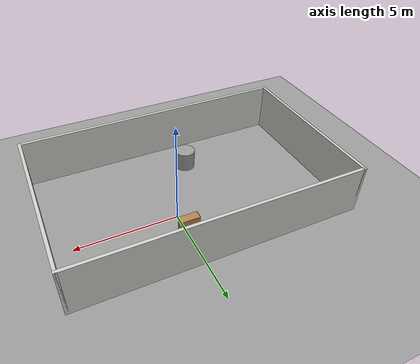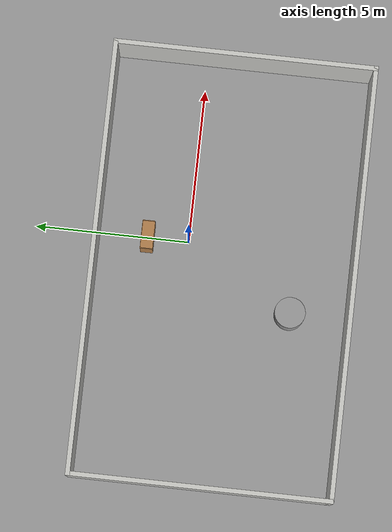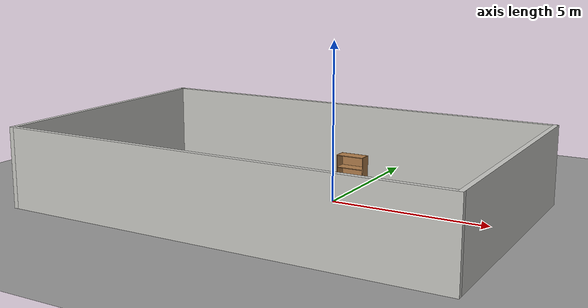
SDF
<sdf version="1.6">
 <world name="default">
  <light name="sun" type="directional">
   <pose>0 0 10 0 -0 0</pose>
   <diffuse>0.8 0.8 0.8 1</diffuse>
   <specular>0.2 0.2 0.2 1</specular>
   <attenuation>
    <range>1000</range>
    <constant>0.9</constant>
    <linear>0.01</linear>
    <quadratic>0.001</quadratic>
   </attenuation>
   <direction>0.5 0.1 -0.9</direction>
  </light>
  <scene><ambient>0.4 0.4 0.4 1</ambient><background>0.7 0.7 0.7 1</background><shadows>1</shadows></scene>
  <model name="bookshelf">
   <static>1</static>
   <link name="link">
    <inertial><mass>1</mass></inertial>
    <collision name="back">
     <pose>0 0.005 0.6 0 -0 0</pose>
     <geometry><box><size>0.9 0.01 1.2</size></box></geometry>
    </collision>
    <visual name="visual1">
     <pose>0 0.005 0.6 0 -0 0</pose>
     <geometry><box><size>0.9 0.01 1.2</size></box></geometry>
     <material>
      <script><uri>file://media/materials/scripts/gazebo.material</uri><name>Gazebo/Wood</name></script>
     </material>
    </visual>
    <collision name="left_side">
     <pose>0.45 -0.195 0.6 0 -0 0</pose>
     <geometry><box><size>0.02 0.4 1.2</size></box></geometry>
    </collision>
    <visual name="visual2">
     <pose>0.45 -0.195 0.6 0 -0 0</pose>
     <geometry><box><size>0.02 0.4 1.2</size></box></geometry>
     <material>
      <script><uri>file://media/materials/scripts/gazebo.material</uri><name>Gazebo/Wood</name></script>
     </material>
    </visual>
    <collision name="right_side">
     <pose>-0.45 -0.195 0.6 0 -0 0</pose>
     <geometry><box><size>0.02 0.4 1.2</size></box></geometry>
    </collision>
    <visual name="visual3">
     <pose>-0.45 -0.195 0.6 0 -0 0</pose>
     <geometry><box><size>0.02 0.4 1.2</size></box></geometry>
     <material>
      <script><uri>file://media/materials/scripts/gazebo.material</uri><name>Gazebo/Wood</name></script>
     </material>
    </visual>
    <collision name="bottom">
     <pose>0 -0.195 0.03 0 -0 0</pose>
     <geometry><box><size>0.88 0.4 0.06</size></box></geometry>
    </collision>
    <visual name="visual4">
     <pose>0 -0.195 0.03 0 -0 0</pose>
     <geometry><box><size>0.88 0.4 0.06</size></box></geometry>
     <material>
      <script><uri>file://media/materials/scripts/gazebo.material</uri><name>Gazebo/Wood</name></script>
     </material>
    </visual>
    <collision name="top">
     <pose>0 -0.195 1.19 0 -0 0</pose>
     <geometry><box><size>0.88 0.4 0.02</size></box></geometry>
    </collision>
    <visual name="visual5">
     <pose>0 -0.195 1.19 0 -0 0</pose>
     <geometry><box><size>0.88 0.4 0.02</size></box></geometry>
     <material>
      <script><uri>file://media/materials/scripts/gazebo.material</uri><name>Gazebo/Wood</name></script>
     </material>
    </visual>
    <collision name="low_shelf">
     <pose>0 -0.195 0.43 0 -0 0</pose>
     <geometry><box><size>0.88 0.4 0.02</size></box></geometry>
    </collision>
    <visual name="visual6">
     <pose>0 -0.195 0.43 0 -0 0</pose>
     <geometry><box><size>0.88 0.4 0.02</size></box></geometry>
     <material>
      <script><uri>file://media/materials/scripts/gazebo.material</uri><name>Gazebo/Wood</name></script>
     </material>
    </visual>
    <collision name="high_shelf">
     <pose>0 -0.195 0.8 0 -0 0</pose>
     <geometry><box><size>0.88 0.4 0.02</size></box></geometry>
    </collision>
    <visual name="visual7">
     <pose>0 -0.195 0.8 0 -0 0</pose>
     <geometry><box><size>0.88 0.4 0.02</size></box></geometry>
     <material>
      <script><uri>file://media/materials/scripts/gazebo.material</uri><name>Gazebo/Wood</name></script>
     </material>
    </visual>
    <velocity_decay><linear>0</linear><angular>0</angular></velocity_decay>
   </link>
   <pose>0 1.53026 0 0 -0 0</pose>
  </model>
  <model name="ground_plane_0">
   <static>1</static>
   <link name="link">
    <collision name="collision">
     <geometry><plane><normal>0 0 1</normal><size>100 100</size></plane></geometry>
     <surface><friction><ode><mu>100</mu><mu2>50</mu2></ode></friction></surface>
    </collision>
    <visual name="visual">
     <cast_shadows>0</cast_shadows>
     <geometry><plane><normal>0 0 1</normal><size>100 100</size></plane></geometry>
     <material>
      <script><uri>file://media/materials/scripts/gazebo.material</uri><name>Gazebo/Grey</name></script>
     </material>
    </visual>
    <velocity_decay><linear>0</linear><angular>0</angular></velocity_decay>
   </link>
   <pose>0.497681 0 0 0 -0 0</pose>
  </model>
  <model name="unit_cylinder_1">
   <pose>-2 -3.4888 0.49912 0 -0 0</pose>
   <link name="link">
    <inertial>
     <mass>1</mass>
     <inertia><ixx>1</ixx><ixy>0</ixy><ixz>0</ixz><iyy>1</iyy><iyz>0</iyz><izz>1</izz></inertia>
    </inertial>
    <collision name="collision">
     <geometry><cylinder><radius>0.5</radius><length>1</length></cylinder></geometry>
    </collision>
    <visual name="visual">
     <geometry><cylinder><radius>0.5</radius><length>1</length></cylinder></geometry>
     <material>
      <script><uri>file://media/materials/scripts/gazebo.material</uri><name>Gazebo/Grey</name></script>
     </material>
    </visual>
    <velocity_decay><linear>0</linear><angular>0</angular></velocity_decay>
   </link>
   <static>0</static>
  </model>
  <model name="ground_plane">
   <static>1</static>
   <link name="link">
    <collision name="collision">
     <geometry><plane><normal>0 0 1</normal><size>100 100</size></plane></geometry>
     <surface><friction><ode><mu>100</mu><mu2>50</mu2></ode></friction></surface>
    </collision>
    <visual name="visual">
     <cast_shadows>0</cast_shadows>
     <geometry><plane><normal>0 0 1</normal><size>100 100</size></plane></geometry>
     <material>
      <script><uri>file://media/materials/scripts/gazebo.material</uri><name>Gazebo/Grey</name></script>
     </material>
    </visual>
   </link>
  </model>
  <gravity>0 0 -9.8</gravity>
  <magnetic_field>6e-06 2.3e-05 -4.2e-05</magnetic_field>
  <atmosphere type="adiabatic"/>
  <spherical_coordinates>
   <surface_model>EARTH_WGS84</surface_model>
   <latitude_deg>0</latitude_deg>
   <longitude_deg>0</longitude_deg>
   <elevation>0</elevation>
   <heading_deg>0</heading_deg>
  </spherical_coordinates>
  <model name="hollow_room">
   <pose>-0.989097 -1.19133 0 0 -0 0</pose>
   <link name="Wall_0">
    <collision name="Wall_0_Collision">
     <geometry><box><size>8.5 0.15 2.5</size></box></geometry>
     <pose>0 0 1.25 0 -0 0</pose>
    </collision>
    <visual name="Wall_0_Visual">
     <pose>0 0 1.25 0 -0 0</pose>
     <geometry><box><size>8.5 0.15 2.5</size></box></geometry>
     <material>
      <script><uri>file://media/materials/scripts/gazebo.material</uri><name>Gazebo/CeilingTiled</name></script>
      <ambient>1 1 1 1</ambient>
     </material>
     <meta><layer>0</layer></meta>
    </visual>
    <pose>-6.925 0 0 0 -0 1.5708</pose>
   </link>
   <link name="Wall_1">
    <collision name="Wall_1_Collision">
     <geometry><box><size>14 0.15 2.5</size></box></geometry>
     <pose>0 0 1.25 0 -0 0</pose>
    </collision>
    <visual name="Wall_1_Visual">
     <pose>0 0 1.25 0 -0 0</pose>
     <geometry><box><size>14 0.15 2.5</size></box></geometry>
     <material>
      <script><uri>file://media/materials/scripts/gazebo.material</uri><name>Gazebo/CeilingTiled</name></script>
      <ambient>1 1 1 1</ambient>
     </material>
     <meta><layer>0</layer></meta>
    </visual>
    <pose>0 4.175 0 0 -0 0</pose>
   </link>
   <link name="Wall_2">
    <collision name="Wall_2_Collision">
     <geometry><box><size>8.5 0.15 2.5</size></box></geometry>
     <pose>0 0 1.25 0 -0 0</pose>
    </collision>
    <visual name="Wall_2_Visual">
     <pose>0 0 1.25 0 -0 0</pose>
     <geometry><box><size>8.5 0.15 2.5</size></box></geometry>
     <material>
      <script><uri>file://media/materials/scripts/gazebo.material</uri><name>Gazebo/CeilingTiled</name></script>
      <ambient>1 1 1 1</ambient>
     </material>
     <meta><layer>0</layer></meta>
    </visual>
    <pose>6.925 0 0 0 0 -1.5708</pose>
   </link>
   <link name="Wall_3">
    <collision name="Wall_3_Collision">
     <geometry><box><size>14 0.15 2.5</size></box></geometry>
     <pose>0 0 1.25 0 -0 0</pose>
    </collision>
    <visual name="Wall_3_Visual">
     <pose>0 0 1.25 0 -0 0</pose>
     <geometry><box><size>14 0.15 2.5</size></box></geometry>
     <material>
      <script><uri>file://media/materials/scripts/gazebo.material</uri><name>Gazebo/CeilingTiled</name></script>
      <ambient>1 1 1 1</ambient>
     </material>
     <meta><layer>0</layer></meta>
    </visual>
    <pose>0 -4.175 0 0 -0 3.14159</pose>
   </link>
   <static>1</static>
  </model>
 </world>
</sdf>
